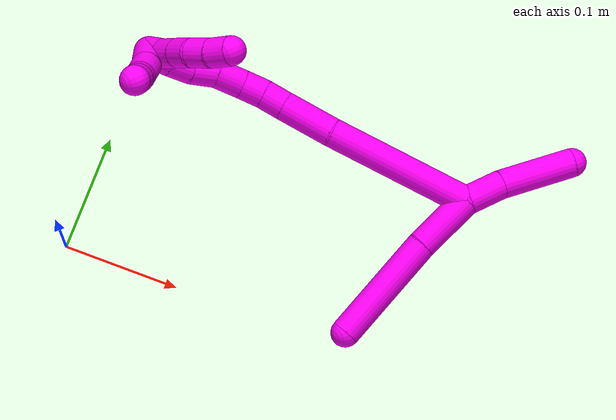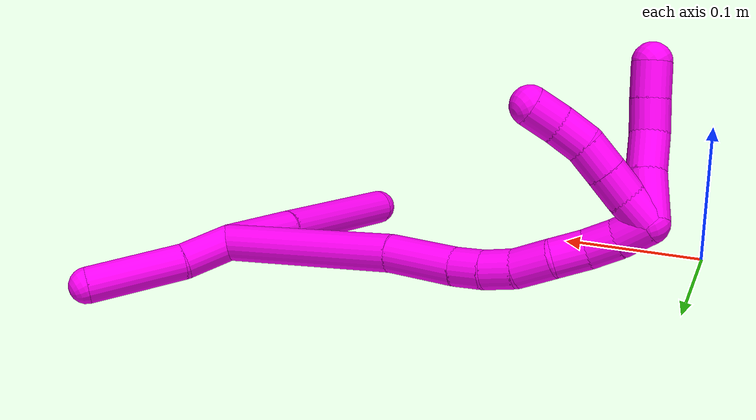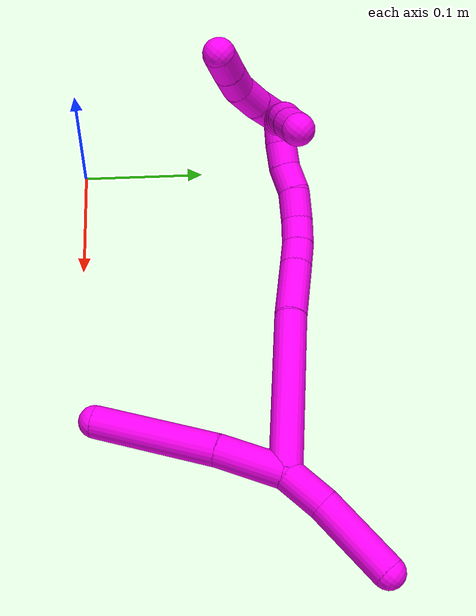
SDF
<sdf version="1.7">
 <world name="default">
  <model name="10">
   <static>0</static>
   <link name="10">
    <collision name="collision-cylinder-e_1_2_8">
     <pose>0.008023 -0.008559 0.023515 0.349067 0.310253 0.055135</pose>
     <geometry><cylinder><radius>0.0125</radius><length>0.052557</length></cylinder></geometry>
     <surface>
      <friction><ode><mu>1.16</mu><mu2>1.16</mu2><slip1>0</slip1><slip2>0</slip2></ode></friction>
      <contact><ode><kp>1e+06</kp><kd>1</kd><max_vel>0</max_vel><min_depth>0.001</min_depth></ode></contact>
     </surface>
    </collision>
    <visual name="visual-cylinder-e_1_2_8">
     <pose>0.008023 -0.008559 0.023515 0.349067 0.310253 0.055135</pose>
     <geometry><cylinder><radius>0.0125</radius><length>0.052557</length></cylinder></geometry>
     <material><ambient>1 0 0.964706 1</ambient></material>
    </visual>
    <collision name="collision-cylinder-e_2_8_6">
     <pose>0.034477 -0.034043 0.088834 0.384695 0.387954 0.076481</pose>
     <geometry><cylinder><radius>0.0125</radius><length>0.097443</length></cylinder></geometry>
     <surface>
      <friction><ode><mu>1.16</mu><mu2>1.16</mu2><slip1>0</slip1><slip2>0</slip2></ode></friction>
      <contact><ode><kp>1e+06</kp><kd>1</kd><max_vel>0</max_vel><min_depth>0.001</min_depth></ode></contact>
     </surface>
    </collision>
    <visual name="visual-cylinder-e_2_8_6">
     <pose>0.034477 -0.034043 0.088834 0.384695 0.387954 0.076481</pose>
     <geometry><cylinder><radius>0.0125</radius><length>0.097443</length></cylinder></geometry>
     <material><ambient>1 0 0.964706 1</ambient></material>
    </visual>
    <collision name="collision-cylinder-e_1_2_9">
     <pose>0.000169 0.001657 -0.017172 -3.04539 0.009812 -0.203128</pose>
     <geometry><cylinder><radius>0.0125</radius><length>0.034505</length></cylinder></geometry>
     <surface>
      <friction><ode><mu>1.16</mu><mu2>1.16</mu2><slip1>0</slip1><slip2>0</slip2></ode></friction>
      <contact><ode><kp>1e+06</kp><kd>1</kd><max_vel>0</max_vel><min_depth>0.001</min_depth></ode></contact>
     </surface>
    </collision>
    <visual name="visual-cylinder-e_1_2_9">
     <pose>0.000169 0.001657 -0.017172 -3.04539 0.009812 -0.203128</pose>
     <geometry><cylinder><radius>0.0125</radius><length>0.034505</length></cylinder></geometry>
     <material><ambient>1 0 0.964706 1</ambient></material>
    </visual>
    <collision name="collision-cylinder-e_2_9_5">
     <pose>0.005424 0.010289 -0.065933 -2.92429 0.155921 -1.24297</pose>
     <geometry><cylinder><radius>0.0125</radius><length>0.065495</length></cylinder></geometry>
     <surface>
      <friction><ode><mu>1.16</mu><mu2>1.16</mu2><slip1>0</slip1><slip2>0</slip2></ode></friction>
      <contact><ode><kp>1e+06</kp><kd>1</kd><max_vel>0</max_vel><min_depth>0.001</min_depth></ode></contact>
     </surface>
    </collision>
    <visual name="visual-cylinder-e_2_9_5">
     <pose>0.005424 0.010289 -0.065933 -2.92429 0.155921 -1.24297</pose>
     <geometry><cylinder><radius>0.0125</radius><length>0.065495</length></cylinder></geometry>
     <material><ambient>1 0 0.964706 1</ambient></material>
    </visual>
    <collision name="collision-cylinder-e_1_2_10">
     <pose>-0.050857 -0.01177 0.035407 0.32093 -0.937836 -0.163629</pose>
     <geometry><cylinder><radius>0.0125</radius><length>0.126152</length></cylinder></geometry>
     <surface>
      <friction><ode><mu>1.16</mu><mu2>1.16</mu2><slip1>0</slip1><slip2>0</slip2></ode></friction>
      <contact><ode><kp>1e+06</kp><kd>1</kd><max_vel>0</max_vel><min_depth>0.001</min_depth></ode></contact>
     </surface>
    </collision>
    <visual name="visual-cylinder-e_1_2_10">
     <pose>-0.050857 -0.01177 0.035407 0.32093 -0.937836 -0.163629</pose>
     <geometry><cylinder><radius>0.0125</radius><length>0.126152</length></cylinder></geometry>
     <material><ambient>1 0 0.964706 1</ambient></material>
    </visual>
    <collision name="collision-cylinder-e_2_10_11">
     <pose>-0.120963 -0.029992 0.082016 0.522568 -0.979368 -0.283129</pose>
     <geometry><cylinder><radius>0.0125</radius><length>0.046376</length></cylinder></geometry>
     <surface>
      <friction><ode><mu>1.16</mu><mu2>1.16</mu2><slip1>0</slip1><slip2>0</slip2></ode></friction>
      <contact><ode><kp>1e+06</kp><kd>1</kd><max_vel>0</max_vel><min_depth>0.001</min_depth></ode></contact>
     </surface>
    </collision>
    <visual name="visual-cylinder-e_2_10_11">
     <pose>-0.120963 -0.029992 0.082016 0.522568 -0.979368 -0.283129</pose>
     <geometry><cylinder><radius>0.0125</radius><length>0.046376</length></cylinder></geometry>
     <material><ambient>1 0 0.964706 1</ambient></material>
    </visual>
    <collision name="collision-cylinder-e_3_11_12">
     <pose>-0.14859 -0.038358 0.098363 0.356093 -0.99078 -0.193858</pose>
     <geometry><cylinder><radius>0.0125</radius><length>0.020031</length></cylinder></geometry>
     <surface>
      <friction><ode><mu>1.16</mu><mu2>1.16</mu2><slip1>0</slip1><slip2>0</slip2></ode></friction>
      <contact><ode><kp>1e+06</kp><kd>1</kd><max_vel>0</max_vel><min_depth>0.001</min_depth></ode></contact>
     </surface>
    </collision>
    <visual name="visual-cylinder-e_3_11_12">
     <pose>-0.14859 -0.038358 0.098363 0.356093 -0.99078 -0.193858</pose>
     <geometry><cylinder><radius>0.0125</radius><length>0.020031</length></cylinder></geometry>
     <material><ambient>1 0 0.964706 1</ambient></material>
    </visual>
    <collision name="collision-cylinder-e_4_12_13">
     <pose>-0.164791 -0.041492 0.109965 0.186762 -0.872189 -0.087233</pose>
     <geometry><cylinder><radius>0.0125</radius><length>0.020436</length></cylinder></geometry>
     <surface>
      <friction><ode><mu>1.16</mu><mu2>1.16</mu2><slip1>0</slip1><slip2>0</slip2></ode></friction>
      <contact><ode><kp>1e+06</kp><kd>1</kd><max_vel>0</max_vel><min_depth>0.001</min_depth></ode></contact>
     </surface>
    </collision>
    <visual name="visual-cylinder-e_4_12_13">
     <pose>-0.164791 -0.041492 0.109965 0.186762 -0.872189 -0.087233</pose>
     <geometry><cylinder><radius>0.0125</radius><length>0.020436</length></cylinder></geometry>
     <material><ambient>1 0 0.964706 1</ambient></material>
    </visual>
    <collision name="collision-cylinder-e_5_13_14">
     <pose>-0.181175 -0.041791 0.125115 -0.105563 -0.774928 0.043113</pose>
     <geometry><cylinder><radius>0.0125</radius><length>0.024469</length></cylinder></geometry>
     <surface>
      <friction><ode><mu>1.16</mu><mu2>1.16</mu2><slip1>0</slip1><slip2>0</slip2></ode></friction>
      <contact><ode><kp>1e+06</kp><kd>1</kd><max_vel>0</max_vel><min_depth>0.001</min_depth></ode></contact>
     </surface>
    </collision>
    <visual name="visual-cylinder-e_5_13_14">
     <pose>-0.181175 -0.041791 0.125115 -0.105563 -0.774928 0.043113</pose>
     <geometry><cylinder><radius>0.0125</radius><length>0.024469</length></cylinder></geometry>
     <material><ambient>1 0 0.964706 1</ambient></material>
    </visual>
    <collision name="collision-cylinder-e_6_14_15">
     <pose>-0.195309 -0.041335 0.142993 0.050505 -0.544878 -0.014113</pose>
     <geometry><cylinder><radius>0.0125</radius><length>0.021508</length></cylinder></geometry>
     <surface>
      <friction><ode><mu>1.16</mu><mu2>1.16</mu2><slip1>0</slip1><slip2>0</slip2></ode></friction>
      <contact><ode><kp>1e+06</kp><kd>1</kd><max_vel>0</max_vel><min_depth>0.001</min_depth></ode></contact>
     </surface>
    </collision>
    <visual name="visual-cylinder-e_6_14_15">
     <pose>-0.195309 -0.041335 0.142993 0.050505 -0.544878 -0.014113</pose>
     <geometry><cylinder><radius>0.0125</radius><length>0.021508</length></cylinder></geometry>
     <material><ambient>1 0 0.964706 1</ambient></material>
    </visual>
    <collision name="collision-cylinder-e_7_15_16">
     <pose>-0.207397 -0.040647 0.159743 -0.151058 -0.705173 0.055675</pose>
     <geometry><cylinder><radius>0.0125</radius><length>0.0201</length></cylinder></geometry>
     <surface>
      <friction><ode><mu>1.16</mu><mu2>1.16</mu2><slip1>0</slip1><slip2>0</slip2></ode></friction>
      <contact><ode><kp>1e+06</kp><kd>1</kd><max_vel>0</max_vel><min_depth>0.001</min_depth></ode></contact>
     </surface>
    </collision>
    <visual name="visual-cylinder-e_7_15_16">
     <pose>-0.207397 -0.040647 0.159743 -0.151058 -0.705173 0.055675</pose>
     <geometry><cylinder><radius>0.0125</radius><length>0.0201</length></cylinder></geometry>
     <material><ambient>1 0 0.964706 1</ambient></material>
    </visual>
    <collision name="collision-cylinder-e_8_16_1">
     <pose>-0.220897 -0.036837 0.174634 -0.348221 -0.730838 0.13439</pose>
     <geometry><cylinder><radius>0.0125</radius><length>0.020929</length></cylinder></geometry>
     <surface>
      <friction><ode><mu>1.16</mu><mu2>1.16</mu2><slip1>0</slip1><slip2>0</slip2></ode></friction>
      <contact><ode><kp>1e+06</kp><kd>1</kd><max_vel>0</max_vel><min_depth>0.001</min_depth></ode></contact>
     </surface>
    </collision>
    <visual name="visual-cylinder-e_8_16_1">
     <pose>-0.220897 -0.036837 0.174634 -0.348221 -0.730838 0.13439</pose>
     <geometry><cylinder><radius>0.0125</radius><length>0.020929</length></cylinder></geometry>
     <material><ambient>1 0 0.964706 1</ambient></material>
    </visual>
    <collision name="collision-cylinder-e_1_1_17">
     <pose>-0.223182 -0.025533 0.180171 -1.77463 0.489192 -0.594753</pose>
     <geometry><cylinder><radius>0.0125</radius><length>0.02</length></cylinder></geometry>
     <surface>
      <friction><ode><mu>1.16</mu><mu2>1.16</mu2><slip1>0</slip1><slip2>0</slip2></ode></friction>
      <contact><ode><kp>1e+06</kp><kd>1</kd><max_vel>0</max_vel><min_depth>0.001</min_depth></ode></contact>
     </surface>
    </collision>
    <visual name="visual-cylinder-e_1_1_17">
     <pose>-0.223182 -0.025533 0.180171 -1.77463 0.489192 -0.594753</pose>
     <geometry><cylinder><radius>0.0125</radius><length>0.02</length></cylinder></geometry>
     <material><ambient>1 0 0.964706 1</ambient></material>
    </visual>
    <collision name="collision-cylinder-e_2_17_18">
     <pose>-0.215028 -0.007679 0.176585 -1.76374 0.352814 -0.426336</pose>
     <geometry><cylinder><radius>0.0125</radius><length>0.02</length></cylinder></geometry>
     <surface>
      <friction><ode><mu>1.16</mu><mu2>1.16</mu2><slip1>0</slip1><slip2>0</slip2></ode></friction>
      <contact><ode><kp>1e+06</kp><kd>1</kd><max_vel>0</max_vel><min_depth>0.001</min_depth></ode></contact>
     </surface>
    </collision>
    <visual name="visual-cylinder-e_2_17_18">
     <pose>-0.215028 -0.007679 0.176585 -1.76374 0.352814 -0.426336</pose>
     <geometry><cylinder><radius>0.0125</radius><length>0.02</length></cylinder></geometry>
     <material><ambient>1 0 0.964706 1</ambient></material>
    </visual>
    <collision name="collision-cylinder-e_3_18_19">
     <pose>-0.207925 0.01067 0.173006 -1.7631 0.373341 -0.450603</pose>
     <geometry><cylinder><radius>0.0125</radius><length>0.02</length></cylinder></geometry>
     <surface>
      <friction><ode><mu>1.16</mu><mu2>1.16</mu2><slip1>0</slip1><slip2>0</slip2></ode></friction>
      <contact><ode><kp>1e+06</kp><kd>1</kd><max_vel>0</max_vel><min_depth>0.001</min_depth></ode></contact>
     </surface>
    </collision>
    <visual name="visual-cylinder-e_3_18_19">
     <pose>-0.207925 0.01067 0.173006 -1.7631 0.373341 -0.450603</pose>
     <geometry><cylinder><radius>0.0125</radius><length>0.02</length></cylinder></geometry>
     <material><ambient>1 0 0.964706 1</ambient></material>
    </visual>
    <collision name="collision-cylinder-e_4_19_20">
     <pose>-0.199913 0.02792 0.167332 -2.01844 0.451677 -0.700282</pose>
     <geometry><cylinder><radius>0.0125</radius><length>0.02</length></cylinder></geometry>
     <surface>
      <friction><ode><mu>1.16</mu><mu2>1.16</mu2><slip1>0</slip1><slip2>0</slip2></ode></friction>
      <contact><ode><kp>1e+06</kp><kd>1</kd><max_vel>0</max_vel><min_depth>0.001</min_depth></ode></contact>
     </surface>
    </collision>
    <visual name="visual-cylinder-e_4_19_20">
     <pose>-0.199913 0.02792 0.167332 -2.01844 0.451677 -0.700282</pose>
     <geometry><cylinder><radius>0.0125</radius><length>0.02</length></cylinder></geometry>
     <material><ambient>1 0 0.964706 1</ambient></material>
    </visual>
    <collision name="collision-cylinder-e_5_20_4">
     <pose>-0.192047 0.044043 0.158585 -2.1154 0.357705 -0.62097</pose>
     <geometry><cylinder><radius>0.0125</radius><length>0.02</length></cylinder></geometry>
     <surface>
      <friction><ode><mu>1.16</mu><mu2>1.16</mu2><slip1>0</slip1><slip2>0</slip2></ode></friction>
      <contact><ode><kp>1e+06</kp><kd>1</kd><max_vel>0</max_vel><min_depth>0.001</min_depth></ode></contact>
     </surface>
    </collision>
    <visual name="visual-cylinder-e_5_20_4">
     <pose>-0.192047 0.044043 0.158585 -2.1154 0.357705 -0.62097</pose>
     <geometry><cylinder><radius>0.0125</radius><length>0.02</length></cylinder></geometry>
     <material><ambient>1 0 0.964706 1</ambient></material>
    </visual>
    <collision name="collision-cylinder-e_1_1_21">
     <pose>-0.220988 -0.022915 0.190643 -0.91391 0.451325 -0.224793</pose>
     <geometry><cylinder><radius>0.0125</radius><length>0.031609</length></cylinder></geometry>
     <surface>
      <friction><ode><mu>1.16</mu><mu2>1.16</mu2><slip1>0</slip1><slip2>0</slip2></ode></friction>
      <contact><ode><kp>1e+06</kp><kd>1</kd><max_vel>0</max_vel><min_depth>0.001</min_depth></ode></contact>
     </surface>
    </collision>
    <visual name="visual-cylinder-e_1_1_21">
     <pose>-0.220988 -0.022915 0.190643 -0.91391 0.451325 -0.224793</pose>
     <geometry><cylinder><radius>0.0125</radius><length>0.031609</length></cylinder></geometry>
     <material><ambient>1 0 0.964706 1</ambient></material>
    </visual>
    <collision name="collision-cylinder-e_2_21_22">
     <pose>-0.20994 -0.002962 0.207371 -0.824048 0.337444 -0.148618</pose>
     <geometry><cylinder><radius>0.0125</radius><length>0.025099</length></cylinder></geometry>
     <surface>
      <friction><ode><mu>1.16</mu><mu2>1.16</mu2><slip1>0</slip1><slip2>0</slip2></ode></friction>
      <contact><ode><kp>1e+06</kp><kd>1</kd><max_vel>0</max_vel><min_depth>0.001</min_depth></ode></contact>
     </surface>
    </collision>
    <visual name="visual-cylinder-e_2_21_22">
     <pose>-0.20994 -0.002962 0.207371 -0.824048 0.337444 -0.148618</pose>
     <geometry><cylinder><radius>0.0125</radius><length>0.025099</length></cylinder></geometry>
     <material><ambient>1 0 0.964706 1</ambient></material>
    </visual>
    <collision name="collision-cylinder-e_3_22_23">
     <pose>-0.203973 0.014658 0.220445 -1.05779 0.175036 -0.102469</pose>
     <geometry><cylinder><radius>0.0125</radius><length>0.020816</length></cylinder></geometry>
     <surface>
      <friction><ode><mu>1.16</mu><mu2>1.16</mu2><slip1>0</slip1><slip2>0</slip2></ode></friction>
      <contact><ode><kp>1e+06</kp><kd>1</kd><max_vel>0</max_vel><min_depth>0.001</min_depth></ode></contact>
     </surface>
    </collision>
    <visual name="visual-cylinder-e_3_22_23">
     <pose>-0.203973 0.014658 0.220445 -1.05779 0.175036 -0.102469</pose>
     <geometry><cylinder><radius>0.0125</radius><length>0.020816</length></cylinder></geometry>
     <material><ambient>1 0 0.964706 1</ambient></material>
    </visual>
    <collision name="collision-cylinder-e_4_23_3">
     <pose>-0.200606 0.03323 0.231035 -1.04771 0.138709 -0.080217</pose>
     <geometry><cylinder><radius>0.0125</radius><length>0.022475</length></cylinder></geometry>
     <surface>
      <friction><ode><mu>1.16</mu><mu2>1.16</mu2><slip1>0</slip1><slip2>0</slip2></ode></friction>
      <contact><ode><kp>1e+06</kp><kd>1</kd><max_vel>0</max_vel><min_depth>0.001</min_depth></ode></contact>
     </surface>
    </collision>
    <visual name="visual-cylinder-e_4_23_3">
     <pose>-0.200606 0.03323 0.231035 -1.04771 0.138709 -0.080217</pose>
     <geometry><cylinder><radius>0.0125</radius><length>0.022475</length></cylinder></geometry>
     <material><ambient>1 0 0.964706 1</ambient></material>
    </visual>
    <collision name="collision-sphere-3">
     <pose>-0.199053 0.042871 0.236595 0 -0 0</pose>
     <geometry><sphere><radius>0.0125</radius></sphere></geometry>
     <surface>
      <friction><ode><mu>1.16</mu><mu2>1.16</mu2><slip1>0</slip1><slip2>0</slip2></ode></friction>
      <contact><ode><kp>1e+06</kp><kd>1</kd><max_vel>0</max_vel><min_depth>0.001</min_depth></ode></contact>
     </surface>
    </collision>
    <visual name="visual-sphere-3">
     <pose>-0.199053 0.042871 0.236595 0 -0 0</pose>
     <geometry><sphere><radius>0.0125</radius></sphere></geometry>
     <material><ambient>1 0 0.964706 1</ambient></material>
    </visual>
    <collision name="collision-sphere-23">
     <pose>-0.20216 0.023588 0.225475 0 -0 0</pose>
     <geometry><sphere><radius>0.0125</radius></sphere></geometry>
     <surface>
      <friction><ode><mu>1.16</mu><mu2>1.16</mu2><slip1>0</slip1><slip2>0</slip2></ode></friction>
      <contact><ode><kp>1e+06</kp><kd>1</kd><max_vel>0</max_vel><min_depth>0.001</min_depth></ode></contact>
     </surface>
    </collision>
    <visual name="visual-sphere-23">
     <pose>-0.20216 0.023588 0.225475 0 -0 0</pose>
     <geometry><sphere><radius>0.0125</radius></sphere></geometry>
     <material><ambient>1 0 0.964706 1</ambient></material>
    </visual>
    <collision name="collision-sphere-22">
     <pose>-0.205785 0.005729 0.215415 0 -0 0</pose>
     <geometry><sphere><radius>0.0125</radius></sphere></geometry>
     <surface>
      <friction><ode><mu>1.16</mu><mu2>1.16</mu2><slip1>0</slip1><slip2>0</slip2></ode></friction>
      <contact><ode><kp>1e+06</kp><kd>1</kd><max_vel>0</max_vel><min_depth>0.001</min_depth></ode></contact>
     </surface>
    </collision>
    <visual name="visual-sphere-22">
     <pose>-0.205785 0.005729 0.215415 0 -0 0</pose>
     <geometry><sphere><radius>0.0125</radius></sphere></geometry>
     <material><ambient>1 0 0.964706 1</ambient></material>
    </visual>
    <collision name="collision-sphere-21">
     <pose>-0.214095 -0.011653 0.199328 0 -0 0</pose>
     <geometry><sphere><radius>0.0125</radius></sphere></geometry>
     <surface>
      <friction><ode><mu>1.16</mu><mu2>1.16</mu2><slip1>0</slip1><slip2>0</slip2></ode></friction>
      <contact><ode><kp>1e+06</kp><kd>1</kd><max_vel>0</max_vel><min_depth>0.001</min_depth></ode></contact>
     </surface>
    </collision>
    <visual name="visual-sphere-21">
     <pose>-0.214095 -0.011653 0.199328 0 -0 0</pose>
     <geometry><sphere><radius>0.0125</radius></sphere></geometry>
     <material><ambient>1 0 0.964706 1</ambient></material>
    </visual>
    <collision name="collision-sphere-4">
     <pose>-0.188546 0.052055 0.153732 0 -0 0</pose>
     <geometry><sphere><radius>0.0125</radius></sphere></geometry>
     <surface>
      <friction><ode><mu>1.16</mu><mu2>1.16</mu2><slip1>0</slip1><slip2>0</slip2></ode></friction>
      <contact><ode><kp>1e+06</kp><kd>1</kd><max_vel>0</max_vel><min_depth>0.001</min_depth></ode></contact>
     </surface>
    </collision>
    <visual name="visual-sphere-4">
     <pose>-0.188546 0.052055 0.153732 0 -0 0</pose>
     <geometry><sphere><radius>0.0125</radius></sphere></geometry>
     <material><ambient>1 0 0.964706 1</ambient></material>
    </visual>
    <collision name="collision-sphere-20">
     <pose>-0.195548 0.036031 0.163438 0 -0 0</pose>
     <geometry><sphere><radius>0.0125</radius></sphere></geometry>
     <surface>
      <friction><ode><mu>1.16</mu><mu2>1.16</mu2><slip1>0</slip1><slip2>0</slip2></ode></friction>
      <contact><ode><kp>1e+06</kp><kd>1</kd><max_vel>0</max_vel><min_depth>0.001</min_depth></ode></contact>
     </surface>
    </collision>
    <visual name="visual-sphere-20">
     <pose>-0.195548 0.036031 0.163438 0 -0 0</pose>
     <geometry><sphere><radius>0.0125</radius></sphere></geometry>
     <material><ambient>1 0 0.964706 1</ambient></material>
    </visual>
    <collision name="collision-sphere-10">
     <pose>-0.101714 -0.02354 0.070813 0 -0 0</pose>
     <geometry><sphere><radius>0.0125</radius></sphere></geometry>
     <surface>
      <friction><ode><mu>1.16</mu><mu2>1.16</mu2><slip1>0</slip1><slip2>0</slip2></ode></friction>
      <contact><ode><kp>1e+06</kp><kd>1</kd><max_vel>0</max_vel><min_depth>0.001</min_depth></ode></contact>
     </surface>
    </collision>
    <visual name="visual-sphere-10">
     <pose>-0.101714 -0.02354 0.070813 0 -0 0</pose>
     <geometry><sphere><radius>0.0125</radius></sphere></geometry>
     <material><ambient>1 0 0.964706 1</ambient></material>
    </visual>
    <collision name="collision-sphere-5">
     <pose>0.010509 0.017263 -0.097523 0 -0 0</pose>
     <geometry><sphere><radius>0.0125</radius></sphere></geometry>
     <surface>
      <friction><ode><mu>1.16</mu><mu2>1.16</mu2><slip1>0</slip1><slip2>0</slip2></ode></friction>
      <contact><ode><kp>1e+06</kp><kd>1</kd><max_vel>0</max_vel><min_depth>0.001</min_depth></ode></contact>
     </surface>
    </collision>
    <visual name="visual-sphere-5">
     <pose>0.010509 0.017263 -0.097523 0 -0 0</pose>
     <geometry><sphere><radius>0.0125</radius></sphere></geometry>
     <material><ambient>1 0 0.964706 1</ambient></material>
    </visual>
    <collision name="collision-sphere-6">
     <pose>0.052908 -0.050968 0.130638 0 -0 0</pose>
     <geometry><sphere><radius>0.0125</radius></sphere></geometry>
     <surface>
      <friction><ode><mu>1.16</mu><mu2>1.16</mu2><slip1>0</slip1><slip2>0</slip2></ode></friction>
      <contact><ode><kp>1e+06</kp><kd>1</kd><max_vel>0</max_vel><min_depth>0.001</min_depth></ode></contact>
     </surface>
    </collision>
    <visual name="visual-sphere-6">
     <pose>0.052908 -0.050968 0.130638 0 -0 0</pose>
     <geometry><sphere><radius>0.0125</radius></sphere></geometry>
     <material><ambient>1 0 0.964706 1</ambient></material>
    </visual>
    <collision name="collision-sphere-9">
     <pose>0.000339 0.003314 -0.034344 0 -0 0</pose>
     <geometry><sphere><radius>0.0125</radius></sphere></geometry>
     <surface>
      <friction><ode><mu>1.16</mu><mu2>1.16</mu2><slip1>0</slip1><slip2>0</slip2></ode></friction>
      <contact><ode><kp>1e+06</kp><kd>1</kd><max_vel>0</max_vel><min_depth>0.001</min_depth></ode></contact>
     </surface>
    </collision>
    <visual name="visual-sphere-9">
     <pose>0.000339 0.003314 -0.034344 0 -0 0</pose>
     <geometry><sphere><radius>0.0125</radius></sphere></geometry>
     <material><ambient>1 0 0.964706 1</ambient></material>
    </visual>
    <collision name="collision-sphere-2">
     <geometry><sphere><radius>0.0125</radius></sphere></geometry>
     <surface>
      <friction><ode><mu>1.16</mu><mu2>1.16</mu2><slip1>0</slip1><slip2>0</slip2></ode></friction>
      <contact><ode><kp>1e+06</kp><kd>1</kd><max_vel>0</max_vel><min_depth>0.001</min_depth></ode></contact>
     </surface>
    </collision>
    <visual name="visual-sphere-2">
     <geometry><sphere><radius>0.0125</radius></sphere></geometry>
     <material><ambient>1 0 0.964706 1</ambient></material>
    </visual>
    <collision name="collision-sphere-19">
     <pose>-0.204278 0.01981 0.171226 0 -0 0</pose>
     <geometry><sphere><radius>0.0125</radius></sphere></geometry>
     <surface>
      <friction><ode><mu>1.16</mu><mu2>1.16</mu2><slip1>0</slip1><slip2>0</slip2></ode></friction>
      <contact><ode><kp>1e+06</kp><kd>1</kd><max_vel>0</max_vel><min_depth>0.001</min_depth></ode></contact>
     </surface>
    </collision>
    <visual name="visual-sphere-19">
     <pose>-0.204278 0.01981 0.171226 0 -0 0</pose>
     <geometry><sphere><radius>0.0125</radius></sphere></geometry>
     <material><ambient>1 0 0.964706 1</ambient></material>
    </visual>
    <collision name="collision-sphere-8">
     <pose>0.016046 -0.017117 0.047029 0 -0 0</pose>
     <geometry><sphere><radius>0.0125</radius></sphere></geometry>
     <surface>
      <friction><ode><mu>1.16</mu><mu2>1.16</mu2><slip1>0</slip1><slip2>0</slip2></ode></friction>
      <contact><ode><kp>1e+06</kp><kd>1</kd><max_vel>0</max_vel><min_depth>0.001</min_depth></ode></contact>
     </surface>
    </collision>
    <visual name="visual-sphere-8">
     <pose>0.016046 -0.017117 0.047029 0 -0 0</pose>
     <geometry><sphere><radius>0.0125</radius></sphere></geometry>
     <material><ambient>1 0 0.964706 1</ambient></material>
    </visual>
    <collision name="collision-sphere-11">
     <pose>-0.140212 -0.036445 0.093219 0 -0 0</pose>
     <geometry><sphere><radius>0.0125</radius></sphere></geometry>
     <surface>
      <friction><ode><mu>1.16</mu><mu2>1.16</mu2><slip1>0</slip1><slip2>0</slip2></ode></friction>
      <contact><ode><kp>1e+06</kp><kd>1</kd><max_vel>0</max_vel><min_depth>0.001</min_depth></ode></contact>
     </surface>
    </collision>
    <visual name="visual-sphere-11">
     <pose>-0.140212 -0.036445 0.093219 0 -0 0</pose>
     <geometry><sphere><radius>0.0125</radius></sphere></geometry>
     <material><ambient>1 0 0.964706 1</ambient></material>
    </visual>
    <collision name="collision-sphere-12">
     <pose>-0.156967 -0.040272 0.103508 0 -0 0</pose>
     <geometry><sphere><radius>0.0125</radius></sphere></geometry>
     <surface>
      <friction><ode><mu>1.16</mu><mu2>1.16</mu2><slip1>0</slip1><slip2>0</slip2></ode></friction>
      <contact><ode><kp>1e+06</kp><kd>1</kd><max_vel>0</max_vel><min_depth>0.001</min_depth></ode></contact>
     </surface>
    </collision>
    <visual name="visual-sphere-12">
     <pose>-0.156967 -0.040272 0.103508 0 -0 0</pose>
     <geometry><sphere><radius>0.0125</radius></sphere></geometry>
     <material><ambient>1 0 0.964706 1</ambient></material>
    </visual>
    <collision name="collision-sphere-13">
     <pose>-0.172615 -0.042712 0.116422 0 -0 0</pose>
     <geometry><sphere><radius>0.0125</radius></sphere></geometry>
     <surface>
      <friction><ode><mu>1.16</mu><mu2>1.16</mu2><slip1>0</slip1><slip2>0</slip2></ode></friction>
      <contact><ode><kp>1e+06</kp><kd>1</kd><max_vel>0</max_vel><min_depth>0.001</min_depth></ode></contact>
     </surface>
    </collision>
    <visual name="visual-sphere-13">
     <pose>-0.172615 -0.042712 0.116422 0 -0 0</pose>
     <geometry><sphere><radius>0.0125</radius></sphere></geometry>
     <material><ambient>1 0 0.964706 1</ambient></material>
    </visual>
    <collision name="collision-sphere-14">
     <pose>-0.189736 -0.04087 0.133808 0 -0 0</pose>
     <geometry><sphere><radius>0.0125</radius></sphere></geometry>
     <surface>
      <friction><ode><mu>1.16</mu><mu2>1.16</mu2><slip1>0</slip1><slip2>0</slip2></ode></friction>
      <contact><ode><kp>1e+06</kp><kd>1</kd><max_vel>0</max_vel><min_depth>0.001</min_depth></ode></contact>
     </surface>
    </collision>
    <visual name="visual-sphere-14">
     <pose>-0.189736 -0.04087 0.133808 0 -0 0</pose>
     <geometry><sphere><radius>0.0125</radius></sphere></geometry>
     <material><ambient>1 0 0.964706 1</ambient></material>
    </visual>
    <collision name="collision-sphere-15">
     <pose>-0.200883 -0.041799 0.152177 0 -0 0</pose>
     <geometry><sphere><radius>0.0125</radius></sphere></geometry>
     <surface>
      <friction><ode><mu>1.16</mu><mu2>1.16</mu2><slip1>0</slip1><slip2>0</slip2></ode></friction>
      <contact><ode><kp>1e+06</kp><kd>1</kd><max_vel>0</max_vel><min_depth>0.001</min_depth></ode></contact>
     </surface>
    </collision>
    <visual name="visual-sphere-15">
     <pose>-0.200883 -0.041799 0.152177 0 -0 0</pose>
     <geometry><sphere><radius>0.0125</radius></sphere></geometry>
     <material><ambient>1 0 0.964706 1</ambient></material>
    </visual>
    <collision name="collision-sphere-16">
     <pose>-0.213911 -0.039496 0.167309 0 -0 0</pose>
     <geometry><sphere><radius>0.0125</radius></sphere></geometry>
     <surface>
      <friction><ode><mu>1.16</mu><mu2>1.16</mu2><slip1>0</slip1><slip2>0</slip2></ode></friction>
      <contact><ode><kp>1e+06</kp><kd>1</kd><max_vel>0</max_vel><min_depth>0.001</min_depth></ode></contact>
     </surface>
    </collision>
    <visual name="visual-sphere-16">
     <pose>-0.213911 -0.039496 0.167309 0 -0 0</pose>
     <geometry><sphere><radius>0.0125</radius></sphere></geometry>
     <material><ambient>1 0 0.964706 1</ambient></material>
    </visual>
    <collision name="collision-sphere-1">
     <pose>-0.227882 -0.034178 0.181958 0 -0 0</pose>
     <geometry><sphere><radius>0.0125</radius></sphere></geometry>
     <surface>
      <friction><ode><mu>1.16</mu><mu2>1.16</mu2><slip1>0</slip1><slip2>0</slip2></ode></friction>
      <contact><ode><kp>1e+06</kp><kd>1</kd><max_vel>0</max_vel><min_depth>0.001</min_depth></ode></contact>
     </surface>
    </collision>
    <visual name="visual-sphere-1">
     <pose>-0.227882 -0.034178 0.181958 0 -0 0</pose>
     <geometry><sphere><radius>0.0125</radius></sphere></geometry>
     <material><ambient>1 0 0.964706 1</ambient></material>
    </visual>
    <collision name="collision-sphere-18">
     <pose>-0.211573 0.001531 0.174786 0 -0 0</pose>
     <geometry><sphere><radius>0.0125</radius></sphere></geometry>
     <surface>
      <friction><ode><mu>1.16</mu><mu2>1.16</mu2><slip1>0</slip1><slip2>0</slip2></ode></friction>
      <contact><ode><kp>1e+06</kp><kd>1</kd><max_vel>0</max_vel><min_depth>0.001</min_depth></ode></contact>
     </surface>
    </collision>
    <visual name="visual-sphere-18">
     <pose>-0.211573 0.001531 0.174786 0 -0 0</pose>
     <geometry><sphere><radius>0.0125</radius></sphere></geometry>
     <material><ambient>1 0 0.964706 1</ambient></material>
    </visual>
    <collision name="collision-sphere-17">
     <pose>-0.218483 -0.016889 0.178384 0 -0 0</pose>
     <geometry><sphere><radius>0.0125</radius></sphere></geometry>
     <surface>
      <friction><ode><mu>1.16</mu><mu2>1.16</mu2><slip1>0</slip1><slip2>0</slip2></ode></friction>
      <contact><ode><kp>1e+06</kp><kd>1</kd><max_vel>0</max_vel><min_depth>0.001</min_depth></ode></contact>
     </surface>
    </collision>
    <visual name="visual-sphere-17">
     <pose>-0.218483 -0.016889 0.178384 0 -0 0</pose>
     <geometry><sphere><radius>0.0125</radius></sphere></geometry>
     <material><ambient>1 0 0.964706 1</ambient></material>
    </visual>
    <inertial>
     <pose>-0.097899 -0.013048 0.091463 0 -0 0</pose>
     <mass>0.75</mass>
     <inertia>
      <ixx>0.000179</ixx>
      <ixy>0</ixy>
      <ixz>0</ixz>
      <iyy>0.000236</iyy>
      <iyz>0</iyz>
      <izz>0.000176</izz>
     </inertia>
    </inertial>
   </link>
   <pose>0.303281 0.150802 0.027072 1.24879 0.146221 -0.734596</pose>
  </model>
 </world>
</sdf>
